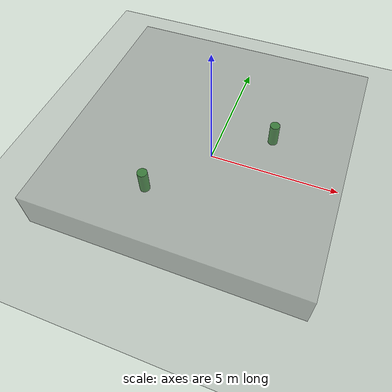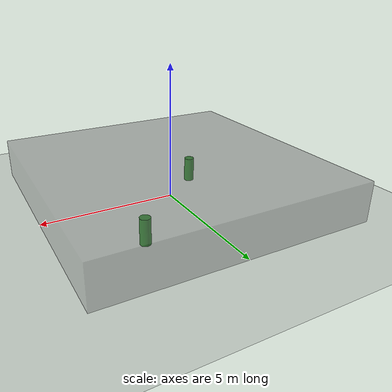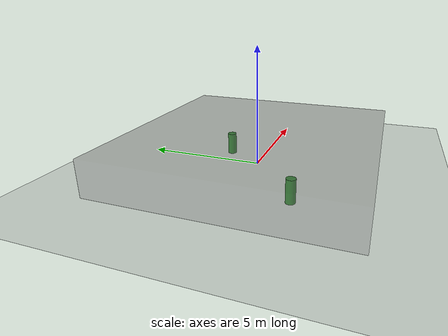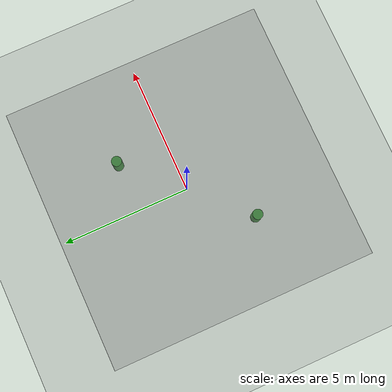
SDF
<?xml version="1.0" ?>
<sdf version="1.6">
  <world name="pollibee_world">
    <include>
      <uri>model://sun</uri>
    </include>
    <include>
      <uri>model://custom_ground</uri>
    </include>

    <!-- Adăugăm o seră simplă -->
    <model name="greenhouse">
      <static>true</static>
      <pose>0 0 0 0 0 0</pose>
      <link name="walls">
        <collision name="collision">
          <geometry>
            <box>
              <size>10 10 3</size>
            </box>
          </geometry>
        </collision>
        <visual name="visual">
          <geometry>
            <box>
              <size>10 10 3</size>
            </box>
          </geometry>
          <material>
            <ambient>0.5 0.5 0.5 0.5</ambient>
            <diffuse>0.5 0.5 0.5 0.5</diffuse>
            <specular>0.1 0.1 0.1 0.1</specular>
          </material>
        </visual>
      </link>
    </model>

    <!-- Adăugăm câteva plante -->
    <model name="plant1">
      <static>true</static>
      <pose>2 2 0 0 0 0</pose>
      <link name="link">
        <collision name="collision">
          <geometry>
            <cylinder>
              <radius>0.2</radius>
              <length>1.0</length>
            </cylinder>
          </geometry>
        </collision>
        <visual name="visual">
          <geometry>
            <cylinder>
              <radius>0.2</radius>
              <length>1.0</length>
            </cylinder>
          </geometry>
          <material>
            <ambient>0 0.5 0 1</ambient>
            <diffuse>0 0.5 0 1</diffuse>
          </material>
        </visual>
      </link>
    </model>

    <model name="plant2">
      <static>true</static>
      <pose>-2 -2 0 0 0 0</pose>
      <link name="link">
        <collision name="collision">
          <geometry>
            <cylinder>
              <radius>0.2</radius>
              <length>1.0</length>
            </cylinder>
          </geometry>
        </collision>
        <visual name="visual">
          <geometry>
            <cylinder>
              <radius>0.2</radius>
              <length>1.0</length>
            </cylinder>
          </geometry>
          <material>
            <ambient>0 0.5 0 1</ambient>
            <diffuse>0 0.5 0 1</diffuse>
          </material>
        </visual>
      </link>
    </model>

    <!-- Setări de fizică -->
    <physics type="ode">
      <max_step_size>0.001</max_step_size>
      <real_time_factor>1</real_time_factor>
      <real_time_update_rate>1000</real_time_update_rate>
      <gravity>0 0 -9.8</gravity>
    </physics>
  </world>
</sdf>

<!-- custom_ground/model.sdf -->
<sdf version="1.6">
  <model name="custom_ground">
    <static>true</static>
    <link name="link">
      <collision name="collision">
        <geometry>
          <plane>
            <normal>0 0 1</normal>
            <size>100 100</size>
          </plane>
        </geometry>
        <surface>
          <friction>
            <ode>
              <mu>100</mu>
              <mu2>50</mu2>
            </ode>
          </friction>
        </surface>
      </collision>
      <visual name="visual">
        <cast_shadows>false</cast_shadows>
        <geometry>
          <plane>
            <normal>0 0 1</normal>
            <size>100 100</size>
          </plane>
        </geometry>
        <material>
          <script>
            <uri>file://media/materials/scripts/gazebo.material</uri>
            <name>Gazebo/Grey</name>
          </script>
        </material>
      </visual>
    </link>
  </model>
</sdf>
